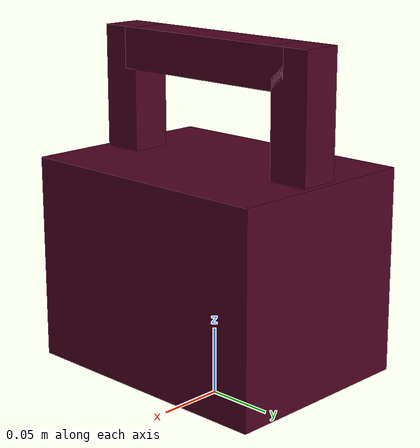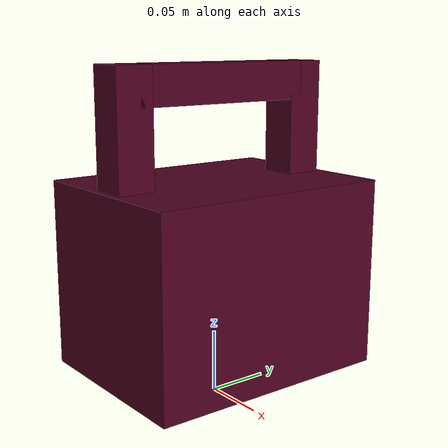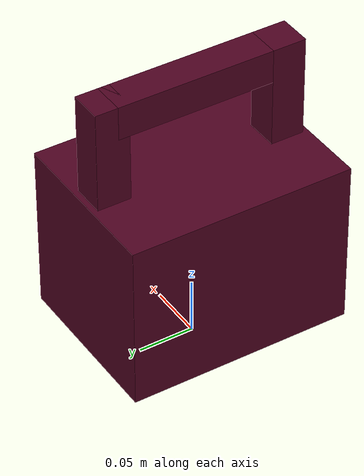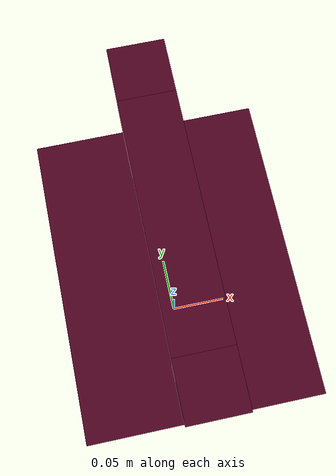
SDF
<?xml version="1.0"?>
<sdf version='1.6'>
<model name="dumbell">
  <link name="base_link">
    <inertial>
      <pose frame=''>0 0 0.1 0 0 0 </pose>
      <mass>0.528</mass>
        <inertia>
          <ixx>1.17e-5</ixx>
          <ixy>0</ixy>
          <ixz>0</ixz>
          <iyy>1.9e-5</iyy>
          <iyz>0</iyz>
          <izz>1.9e-5</izz>
        </inertia>
    </inertial>
    <visual name='base_box'>
      <pose frame=''>0 0 0.1 0 0 0</pose>
      <geometry>
        <box>
          <size>0.15 0.2 0.15</size>
        </box>
      </geometry>
      <material>
        <diffuse>0.31 0.01 0.13 1.0</diffuse>
      </material>
    </visual>
    <collision name='box_collision'>
      <pose>0 0 0.1 0 0 0</pose>
      <geometry>
        <box>
          <size>0.145 0.15 0.145</size>
        </box>
      </geometry>
      <material>
        <diffuse>0 1 0 1.0</diffuse>
      </material>
    </collision>
    <collision name='point_collision1'>
      <pose>0.075 0.1 0.02 0 0 0</pose>
      <geometry>
        <sphere><radius>1e-7</radius></sphere>
      </geometry>
    </collision>
    <collision name='point_collision2'>
      <pose>0.075 -0.1 0.02 0 0 0</pose>
      <geometry>
        <sphere><radius>1e-7</radius></sphere>
      </geometry>
    </collision>
    <collision name='point_collision3'>
      <pose>-0.075 0.1 0.02 0 0 0</pose>
      <geometry>
        <sphere><radius>1e-7</radius></sphere>
      </geometry>
    </collision>
    <collision name='point_collision4'>
      <pose>-0.075 -0.1 0.02 0 0 0</pose>
      <geometry>
        <sphere><radius>1e-7</radius></sphere>
      </geometry>
    </collision>

    <visual name='handle_top'>
      <pose frame=''>0 0 0.25 0 0 0</pose>
      <geometry>
        <box>
          <size>0.03 0.15 0.03</size>
        </box>
      </geometry>
      <material>
        <diffuse>0.31 0.01 0.13 1.0</diffuse>
      </material>
    </visual>
    <collision name='handle_top_collision'>
      <pose frame="">0 0 0.25 0 0 0</pose>
      <geometry>
        <box>
          <size>0.03 0.15 0.03</size>
        </box>
      </geometry>
    </collision>

    <visual name='handle_left'>
      <pose frame=''>0.0 0.08 0.215 0 0 0</pose>
      <geometry>
        <box>
          <size>0.03 0.03 0.10</size>
        </box>
      </geometry>
      <material>
        <diffuse>0.31 0.01 0.13 1.0</diffuse>
      </material>
    </visual>
    <collision name='handle_left_collision'>
      <pose frame=''>0.0 0.08 0.215 0 0 0</pose>
      <geometry>
        <box>
          <size>0.03 0.03 0.10</size>
        </box>
      </geometry>
    </collision>

    <visual name='handle_right'>
      <pose frame=''>0.0 -0.08 0.215 0 0 0</pose>
      <geometry>
        <box>
          <size>0.03 0.03 0.10</size>
        </box>
      </geometry>
      <material>
        <diffuse>0.31 0.01 0.13 1.0</diffuse>
      </material>
    </visual>
    <collision name='handle_right_collision'>
      <pose frame=''>0.0 -0.08 0.215 0 0 0</pose>
      <geometry>
        <box>
          <size>0.03 0.03 0.10</size>
        </box>
      </geometry>
    </collision>

   </link>
</model>
</sdf>
